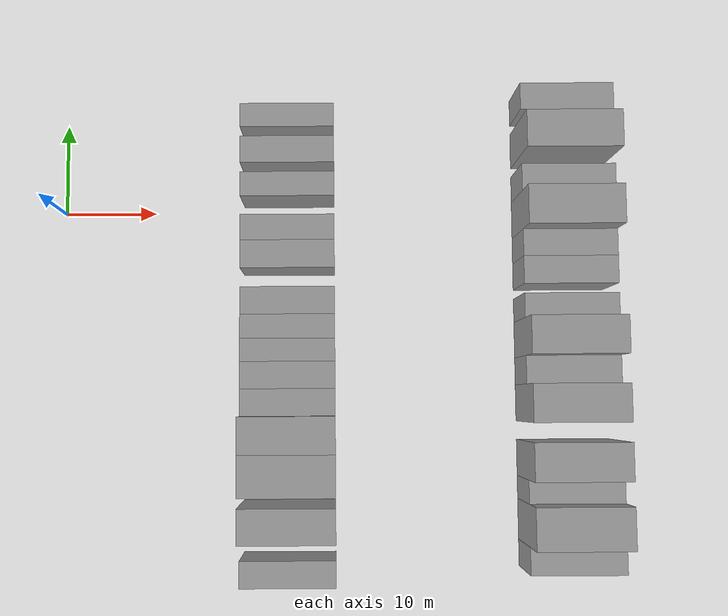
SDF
<sdf version="1.6">
 <world name="default">
  <model name="building_35">
   <static>1</static>
   <pose>25.0000 -38.9038 0 0.000000 0.000000 0.000000</pose>
   <link name="link">
    <pose>0 0 3.00 0 0 0</pose>
    <collision name="collision"><geometry><box><size>10.0000 2.7877 6.0000</size></box></geometry></collision>
    <visual name="visual">
     <cast_shadows>0</cast_shadows>
     <geometry><box><size>10.0000 2.7877 6.0000</size></box></geometry>
     <material>
      <script>
       <uri>model://grey_wall/materials/scripts</uri>
       <uri>model://grey_wall/materials/textures</uri>
       <name>vrc/grey_wall</name>
      </script>
     </material>
    </visual>
   </link>
  </model>
  <model name="building_36">
   <static>1</static>
   <pose>25.0000 -33.6830 0 0.000000 0.000000 0.000000</pose>
   <link name="link">
    <pose>0 0 4.50 0 0 0</pose>
    <collision name="collision"><geometry><box><size>10.0000 3.6540 9.0000</size></box></geometry></collision>
    <visual name="visual">
     <cast_shadows>0</cast_shadows>
     <geometry><box><size>10.0000 3.6540 9.0000</size></box></geometry>
     <material>
      <script>
       <uri>model://grey_wall/materials/scripts</uri>
       <uri>model://grey_wall/materials/textures</uri>
       <name>vrc/grey_wall</name>
      </script>
     </material>
    </visual>
   </link>
  </model>
  <model name="building_37">
   <static>1</static>
   <pose>25.0000 -28.6981 0 0.000000 0.000000 0.000000</pose>
   <link name="link">
    <pose>0 0 4.50 0 0 0</pose>
    <collision name="collision"><geometry><box><size>10.0000 4.3158 9.0000</size></box></geometry></collision>
    <visual name="visual">
     <cast_shadows>0</cast_shadows>
     <geometry><box><size>10.0000 4.3158 9.0000</size></box></geometry>
     <material>
      <script>
       <uri>model://grey_wall/materials/scripts</uri>
       <uri>model://grey_wall/materials/textures</uri>
       <name>vrc/grey_wall</name>
      </script>
     </material>
    </visual>
   </link>
  </model>
  <model name="building_38">
   <static>1</static>
   <pose>25.0000 -24.6062 0 0.000000 0.000000 0.000000</pose>
   <link name="link">
    <pose>0 0 4.50 0 0 0</pose>
    <collision name="collision"><geometry><box><size>10.0000 3.8679 9.0000</size></box></geometry></collision>
    <visual name="visual">
     <cast_shadows>0</cast_shadows>
     <geometry><box><size>10.0000 3.8679 9.0000</size></box></geometry>
     <material>
      <script>
       <uri>model://grey_wall/materials/scripts</uri>
       <uri>model://grey_wall/materials/textures</uri>
       <name>vrc/grey_wall</name>
      </script>
     </material>
    </visual>
   </link>
  </model>
  <model name="building_39">
   <static>1</static>
   <pose>25.0000 -21.2416 0 0.000000 0.000000 0.000000</pose>
   <link name="link">
    <pose>0 0 3.00 0 0 0</pose>
    <collision name="collision"><geometry><box><size>10.0000 2.8612 6.0000</size></box></geometry></collision>
    <visual name="visual">
     <cast_shadows>0</cast_shadows>
     <geometry><box><size>10.0000 2.8612 6.0000</size></box></geometry>
     <material>
      <script>
       <uri>model://grey_wall/materials/scripts</uri>
       <uri>model://grey_wall/materials/textures</uri>
       <name>vrc/grey_wall</name>
      </script>
     </material>
    </visual>
   </link>
  </model>
  <model name="building_40">
   <static>1</static>
   <pose>25.0000 -18.3810 0 0.000000 0.000000 0.000000</pose>
   <link name="link">
    <pose>0 0 3.00 0 0 0</pose>
    <collision name="collision"><geometry><box><size>10.0000 2.8601 6.0000</size></box></geometry></collision>
    <visual name="visual">
     <cast_shadows>0</cast_shadows>
     <geometry><box><size>10.0000 2.8601 6.0000</size></box></geometry>
     <material>
      <script>
       <uri>model://grey_wall/materials/scripts</uri>
       <uri>model://grey_wall/materials/textures</uri>
       <name>vrc/grey_wall</name>
      </script>
     </material>
    </visual>
   </link>
  </model>
  <model name="building_41">
   <static>1</static>
   <pose>25.0000 -15.7425 0 0.000000 0.000000 0.000000</pose>
   <link name="link">
    <pose>0 0 3.00 0 0 0</pose>
    <collision name="collision"><geometry><box><size>10.0000 2.4168 6.0000</size></box></geometry></collision>
    <visual name="visual">
     <cast_shadows>0</cast_shadows>
     <geometry><box><size>10.0000 2.4168 6.0000</size></box></geometry>
     <material>
      <script>
       <uri>model://grey_wall/materials/scripts</uri>
       <uri>model://grey_wall/materials/textures</uri>
       <name>vrc/grey_wall</name>
      </script>
     </material>
    </visual>
   </link>
  </model>
  <model name="building_42">
   <static>1</static>
   <pose>25.0000 -13.2547 0 0.000000 0.000000 0.000000</pose>
   <link name="link">
    <pose>0 0 3.00 0 0 0</pose>
    <collision name="collision"><geometry><box><size>10.0000 2.5588 6.0000</size></box></geometry></collision>
    <visual name="visual">
     <cast_shadows>0</cast_shadows>
     <geometry><box><size>10.0000 2.5588 6.0000</size></box></geometry>
     <material>
      <script>
       <uri>model://grey_wall/materials/scripts</uri>
       <uri>model://grey_wall/materials/textures</uri>
       <name>vrc/grey_wall</name>
      </script>
     </material>
    </visual>
   </link>
  </model>
  <model name="building_43">
   <static>1</static>
   <pose>25.0000 -10.5216 0 0.000000 0.000000 0.000000</pose>
   <link name="link">
    <pose>0 0 3.00 0 0 0</pose>
    <collision name="collision"><geometry><box><size>10.0000 2.9074 6.0000</size></box></geometry></collision>
    <visual name="visual">
     <cast_shadows>0</cast_shadows>
     <geometry><box><size>10.0000 2.9074 6.0000</size></box></geometry>
     <material>
      <script>
       <uri>model://grey_wall/materials/scripts</uri>
       <uri>model://grey_wall/materials/textures</uri>
       <name>vrc/grey_wall</name>
      </script>
     </material>
    </visual>
   </link>
  </model>
  <model name="building_44">
   <static>1</static>
   <pose>25.0000 -5.5782 0 0.000000 0.000000 0.000000</pose>
   <link name="link">
    <pose>0 0 3.00 0 0 0</pose>
    <collision name="collision"><geometry><box><size>10.0000 2.9794 6.0000</size></box></geometry></collision>
    <visual name="visual">
     <cast_shadows>0</cast_shadows>
     <geometry><box><size>10.0000 2.9794 6.0000</size></box></geometry>
     <material>
      <script>
       <uri>model://grey_wall/materials/scripts</uri>
       <uri>model://grey_wall/materials/textures</uri>
       <name>vrc/grey_wall</name>
      </script>
     </material>
    </visual>
   </link>
  </model>
  <model name="building_45">
   <static>1</static>
   <pose>25.0000 -2.7272 0 0.000000 0.000000 0.000000</pose>
   <link name="link">
    <pose>0 0 3.00 0 0 0</pose>
    <collision name="collision"><geometry><box><size>10.0000 2.7225 6.0000</size></box></geometry></collision>
    <visual name="visual">
     <cast_shadows>0</cast_shadows>
     <geometry><box><size>10.0000 2.7225 6.0000</size></box></geometry>
     <material>
      <script>
       <uri>model://grey_wall/materials/scripts</uri>
       <uri>model://grey_wall/materials/textures</uri>
       <name>vrc/grey_wall</name>
      </script>
     </material>
    </visual>
   </link>
  </model>
  <model name="building_46">
   <static>1</static>
   <pose>25.0000 1.9381 0 0.000000 0.000000 0.000000</pose>
   <link name="link">
    <pose>0 0 3.00 0 0 0</pose>
    <collision name="collision"><geometry><box><size>10.0000 2.6081 6.0000</size></box></geometry></collision>
    <visual name="visual">
     <cast_shadows>0</cast_shadows>
     <geometry><box><size>10.0000 2.6081 6.0000</size></box></geometry>
     <material>
      <script>
       <uri>model://grey_wall/materials/scripts</uri>
       <uri>model://grey_wall/materials/textures</uri>
       <name>vrc/grey_wall</name>
      </script>
     </material>
    </visual>
   </link>
  </model>
  <model name="building_47">
   <static>1</static>
   <pose>25.0000 5.6849 0 0.000000 0.000000 0.000000</pose>
   <link name="link">
    <pose>0 0 3.00 0 0 0</pose>
    <collision name="collision"><geometry><box><size>10.0000 2.8855 6.0000</size></box></geometry></collision>
    <visual name="visual">
     <cast_shadows>0</cast_shadows>
     <geometry><box><size>10.0000 2.8855 6.0000</size></box></geometry>
     <material>
      <script>
       <uri>model://grey_wall/materials/scripts</uri>
       <uri>model://grey_wall/materials/textures</uri>
       <name>vrc/grey_wall</name>
      </script>
     </material>
    </visual>
   </link>
  </model>
  <model name="building_48">
   <static>1</static>
   <pose>25.0000 9.4006 0 0.000000 0.000000 0.000000</pose>
   <link name="link">
    <pose>0 0 3.00 0 0 0</pose>
    <collision name="collision"><geometry><box><size>10.0000 2.5460 6.0000</size></box></geometry></collision>
    <visual name="visual">
     <cast_shadows>0</cast_shadows>
     <geometry><box><size>10.0000 2.5460 6.0000</size></box></geometry>
     <material>
      <script>
       <uri>model://grey_wall/materials/scripts</uri>
       <uri>model://grey_wall/materials/textures</uri>
       <name>vrc/grey_wall</name>
      </script>
     </material>
    </visual>
   </link>
  </model>
  <model name="building_146">
   <static>1</static>
   <pose>55.0000 -37.7291 0 0.000000 0.000000 0.000000</pose>
   <link name="link">
    <pose>0 0 3.00 0 0 0</pose>
    <collision name="collision"><geometry><box><size>10.0000 2.8868 6.0000</size></box></geometry></collision>
    <visual name="visual">
     <cast_shadows>0</cast_shadows>
     <geometry><box><size>10.0000 2.8868 6.0000</size></box></geometry>
     <material>
      <script>
       <uri>model://grey_wall/materials/scripts</uri>
       <uri>model://grey_wall/materials/textures</uri>
       <name>vrc/grey_wall</name>
      </script>
     </material>
    </visual>
   </link>
  </model>
  <model name="building_147">
   <static>1</static>
   <pose>55.0000 -34.0824 0 0.000000 0.000000 0.000000</pose>
   <link name="link">
    <pose>0 0 4.50 0 0 0</pose>
    <collision name="collision"><geometry><box><size>10.0000 4.4066 9.0000</size></box></geometry></collision>
    <visual name="visual">
     <cast_shadows>0</cast_shadows>
     <geometry><box><size>10.0000 4.4066 9.0000</size></box></geometry>
     <material>
      <script>
       <uri>model://grey_wall/materials/scripts</uri>
       <uri>model://grey_wall/materials/textures</uri>
       <name>vrc/grey_wall</name>
      </script>
     </material>
    </visual>
   </link>
  </model>
  <model name="building_148">
   <static>1</static>
   <pose>55.0000 -30.6467 0 0.000000 0.000000 0.000000</pose>
   <link name="link">
    <pose>0 0 3.00 0 0 0</pose>
    <collision name="collision"><geometry><box><size>10.0000 2.4649 6.0000</size></box></geometry></collision>
    <visual name="visual">
     <cast_shadows>0</cast_shadows>
     <geometry><box><size>10.0000 2.4649 6.0000</size></box></geometry>
     <material>
      <script>
       <uri>model://grey_wall/materials/scripts</uri>
       <uri>model://grey_wall/materials/textures</uri>
       <name>vrc/grey_wall</name>
      </script>
     </material>
    </visual>
   </link>
  </model>
  <model name="building_149">
   <static>1</static>
   <pose>55.0000 -27.4281 0 0.000000 0.000000 0.000000</pose>
   <link name="link">
    <pose>0 0 4.50 0 0 0</pose>
    <collision name="collision"><geometry><box><size>10.0000 3.9722 9.0000</size></box></geometry></collision>
    <visual name="visual">
     <cast_shadows>0</cast_shadows>
     <geometry><box><size>10.0000 3.9722 9.0000</size></box></geometry>
     <material>
      <script>
       <uri>model://grey_wall/materials/scripts</uri>
       <uri>model://grey_wall/materials/textures</uri>
       <name>vrc/grey_wall</name>
      </script>
     </material>
    </visual>
   </link>
  </model>
  <model name="building_150">
   <static>1</static>
   <pose>55.0000 -21.4527 0 0.000000 0.000000 0.000000</pose>
   <link name="link">
    <pose>0 0 4.50 0 0 0</pose>
    <collision name="collision"><geometry><box><size>10.0000 3.9786 9.0000</size></box></geometry></collision>
    <visual name="visual">
     <cast_shadows>0</cast_shadows>
     <geometry><box><size>10.0000 3.9786 9.0000</size></box></geometry>
     <material>
      <script>
       <uri>model://grey_wall/materials/scripts</uri>
       <uri>model://grey_wall/materials/textures</uri>
       <name>vrc/grey_wall</name>
      </script>
     </material>
    </visual>
   </link>
  </model>
  <model name="building_151">
   <static>1</static>
   <pose>55.0000 -17.9758 0 0.000000 0.000000 0.000000</pose>
   <link name="link">
    <pose>0 0 3.00 0 0 0</pose>
    <collision name="collision"><geometry><box><size>10.0000 2.9753 6.0000</size></box></geometry></collision>
    <visual name="visual">
     <cast_shadows>0</cast_shadows>
     <geometry><box><size>10.0000 2.9753 6.0000</size></box></geometry>
     <material>
      <script>
       <uri>model://grey_wall/materials/scripts</uri>
       <uri>model://grey_wall/materials/textures</uri>
       <name>vrc/grey_wall</name>
      </script>
     </material>
    </visual>
   </link>
  </model>
  <model name="building_152">
   <static>1</static>
   <pose>55.0000 -14.4948 0 0.000000 0.000000 0.000000</pose>
   <link name="link">
    <pose>0 0 4.50 0 0 0</pose>
    <collision name="collision"><geometry><box><size>10.0000 3.9866 9.0000</size></box></geometry></collision>
    <visual name="visual">
     <cast_shadows>0</cast_shadows>
     <geometry><box><size>10.0000 3.9866 9.0000</size></box></geometry>
     <material>
      <script>
       <uri>model://grey_wall/materials/scripts</uri>
       <uri>model://grey_wall/materials/textures</uri>
       <name>vrc/grey_wall</name>
      </script>
     </material>
    </visual>
   </link>
  </model>
  <model name="building_153">
   <static>1</static>
   <pose>55.0000 -11.2010 0 0.000000 0.000000 0.000000</pose>
   <link name="link">
    <pose>0 0 3.00 0 0 0</pose>
    <collision name="collision"><geometry><box><size>10.0000 2.6010 6.0000</size></box></geometry></collision>
    <visual name="visual">
     <cast_shadows>0</cast_shadows>
     <geometry><box><size>10.0000 2.6010 6.0000</size></box></geometry>
     <material>
      <script>
       <uri>model://grey_wall/materials/scripts</uri>
       <uri>model://grey_wall/materials/textures</uri>
       <name>vrc/grey_wall</name>
      </script>
     </material>
    </visual>
   </link>
  </model>
  <model name="building_154">
   <static>1</static>
   <pose>55.0000 -7.4275 0 0.000000 0.000000 0.000000</pose>
   <link name="link">
    <pose>0 0 3.00 0 0 0</pose>
    <collision name="collision"><geometry><box><size>10.0000 2.9459 6.0000</size></box></geometry></collision>
    <visual name="visual">
     <cast_shadows>0</cast_shadows>
     <geometry><box><size>10.0000 2.9459 6.0000</size></box></geometry>
     <material>
      <script>
       <uri>model://grey_wall/materials/scripts</uri>
       <uri>model://grey_wall/materials/textures</uri>
       <name>vrc/grey_wall</name>
      </script>
     </material>
    </visual>
   </link>
  </model>
  <model name="building_155">
   <static>1</static>
   <pose>55.0000 -4.5272 0 0.000000 0.000000 0.000000</pose>
   <link name="link">
    <pose>0 0 3.00 0 0 0</pose>
    <collision name="collision"><geometry><box><size>10.0000 2.8549 6.0000</size></box></geometry></collision>
    <visual name="visual">
     <cast_shadows>0</cast_shadows>
     <geometry><box><size>10.0000 2.8549 6.0000</size></box></geometry>
     <material>
      <script>
       <uri>model://grey_wall/materials/scripts</uri>
       <uri>model://grey_wall/materials/textures</uri>
       <name>vrc/grey_wall</name>
      </script>
     </material>
    </visual>
   </link>
  </model>
  <model name="building_156">
   <static>1</static>
   <pose>55.0000 -1.0427 0 0.000000 0.000000 0.000000</pose>
   <link name="link">
    <pose>0 0 4.50 0 0 0</pose>
    <collision name="collision"><geometry><box><size>10.0000 4.1139 9.0000</size></box></geometry></collision>
    <visual name="visual">
     <cast_shadows>0</cast_shadows>
     <geometry><box><size>10.0000 4.1139 9.0000</size></box></geometry>
     <material>
      <script>
       <uri>model://grey_wall/materials/scripts</uri>
       <uri>model://grey_wall/materials/textures</uri>
       <name>vrc/grey_wall</name>
      </script>
     </material>
    </visual>
   </link>
  </model>
  <model name="building_157">
   <static>1</static>
   <pose>55.0000 2.4739 0 0.000000 0.000000 0.000000</pose>
   <link name="link">
    <pose>0 0 3.00 0 0 0</pose>
    <collision name="collision"><geometry><box><size>10.0000 2.9193 6.0000</size></box></geometry></collision>
    <visual name="visual">
     <cast_shadows>0</cast_shadows>
     <geometry><box><size>10.0000 2.9193 6.0000</size></box></geometry>
     <material>
      <script>
       <uri>model://grey_wall/materials/scripts</uri>
       <uri>model://grey_wall/materials/textures</uri>
       <name>vrc/grey_wall</name>
      </script>
     </material>
    </visual>
   </link>
  </model>
  <model name="building_158">
   <static>1</static>
   <pose>55.0000 6.8937 0 0.000000 0.000000 0.000000</pose>
   <link name="link">
    <pose>0 0 4.50 0 0 0</pose>
    <collision name="collision"><geometry><box><size>10.0000 3.9205 9.0000</size></box></geometry></collision>
    <visual name="visual">
     <cast_shadows>0</cast_shadows>
     <geometry><box><size>10.0000 3.9205 9.0000</size></box></geometry>
     <material>
      <script>
       <uri>model://grey_wall/materials/scripts</uri>
       <uri>model://grey_wall/materials/textures</uri>
       <name>vrc/grey_wall</name>
      </script>
     </material>
    </visual>
   </link>
  </model>
  <model name="building_159">
   <static>1</static>
   <pose>55.0000 11.2931 0 0.000000 0.000000 0.000000</pose>
   <link name="link">
    <pose>0 0 3.00 0 0 0</pose>
    <collision name="collision"><geometry><box><size>10.0000 2.8783 6.0000</size></box></geometry></collision>
    <visual name="visual">
     <cast_shadows>0</cast_shadows>
     <geometry><box><size>10.0000 2.8783 6.0000</size></box></geometry>
     <material>
      <script>
       <uri>model://grey_wall/materials/scripts</uri>
       <uri>model://grey_wall/materials/textures</uri>
       <name>vrc/grey_wall</name>
      </script>
     </material>
    </visual>
   </link>
  </model>
 </world>
</sdf>
